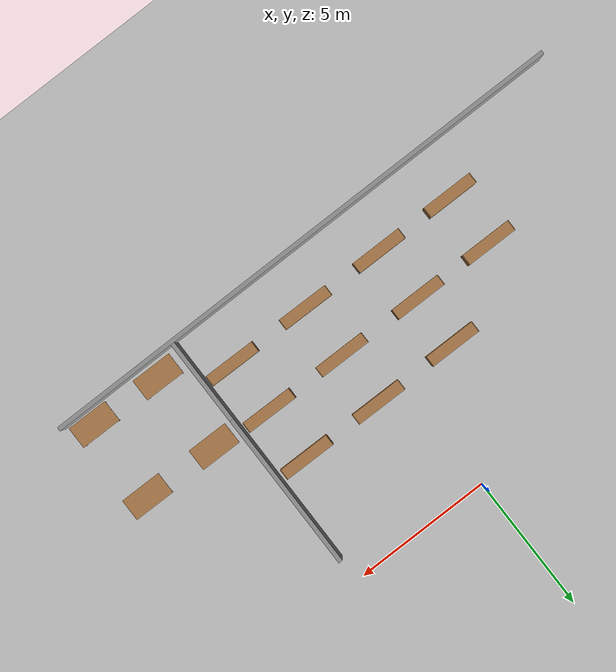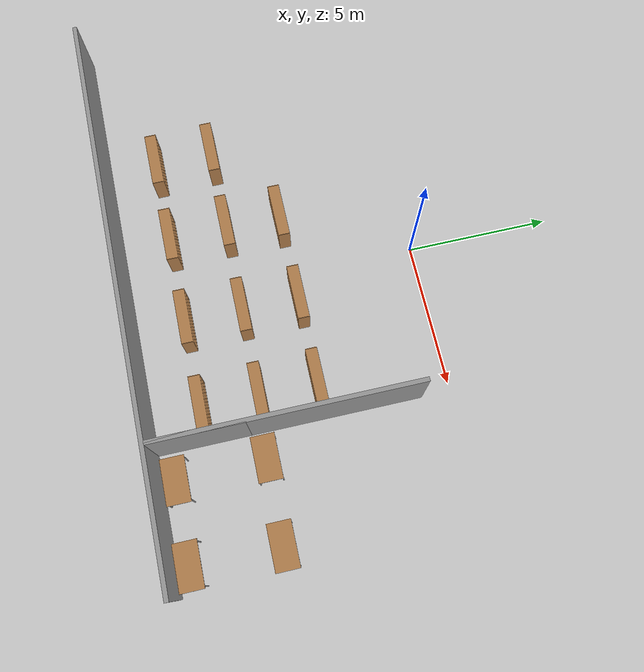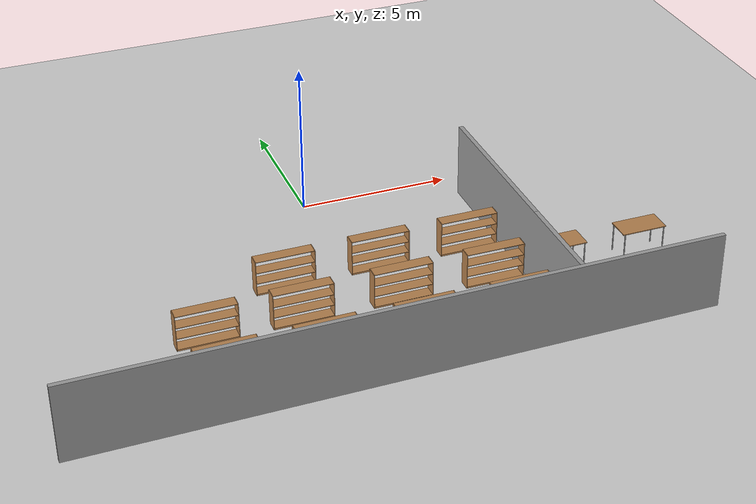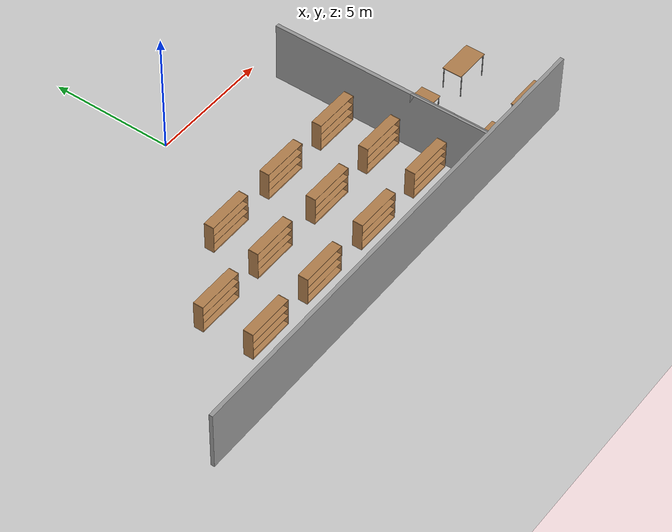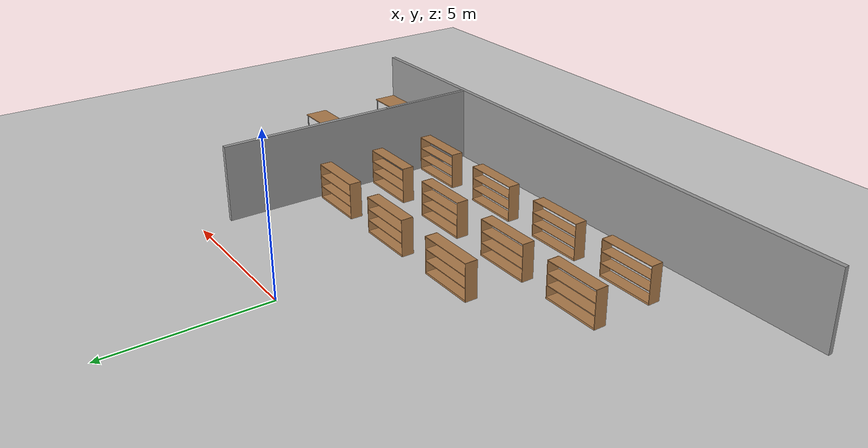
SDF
<sdf version="1.7">
 <world name="default">
  <model name="ground_plane">
   <static>1</static>
   <link name="link">
    <collision name="collision">
     <geometry><plane><normal>0 0 1</normal><size>100 100</size></plane></geometry>
     <surface>
      <contact><collide_bitmask>65535</collide_bitmask></contact>
      <friction><ode><mu>100</mu><mu2>50</mu2></ode></friction>
     </surface>
    </collision>
    <visual name="visual">
     <cast_shadows>0</cast_shadows>
     <geometry><plane><normal>0 0 1</normal><size>100 100</size></plane></geometry>
     <material>
      <script><uri>file://media/materials/scripts/gazebo.material</uri><name>Gazebo/Grey</name></script>
     </material>
    </visual>
   </link>
  </model>
  <model name="wall_20m_0_clone">
   <pose>-0.174596 -10.5481 0 0 0 -1.56837</pose>
   <link name="Wall_0">
    <collision name="Wall_0_Collision">
     <geometry><box><size>20 0.15 2.5</size></box></geometry>
     <pose>0 0 1.25 0 -0 0</pose>
    </collision>
    <visual name="Wall_0_Visual">
     <pose>0 0 1.25 0 -0 0</pose>
     <geometry><box><size>20 0.15 2.5</size></box></geometry>
     <material>
      <script><uri>file://media/materials/scripts/gazebo.material</uri><name>Gazebo/Grey</name></script>
      <ambient>1 1 1 1</ambient>
     </material>
     <meta><layer>0</layer></meta>
    </visual>
    <pose>-0.482276 -0 0 0 -0 1.5708</pose>
   </link>
   <static>1</static>
  </model>
  <model name="wall_9m_1">
   <pose>5.19681 -5.49004 0 0 0 -1.57385</pose>
   <link name="Wall_0">
    <collision name="Wall_0_Collision">
     <geometry><box><size>3.16 0.15 2.5</size></box></geometry>
     <pose>0 0 1.25 0 -0 0</pose>
    </collision>
    <visual name="Wall_0_Visual">
     <pose>0 0 1.25 0 -0 0</pose>
     <geometry><box><size>3.16 0.15 2.5</size></box></geometry>
     <material>
      <script><uri>file://media/materials/scripts/gazebo.material</uri><name>Gazebo/Grey</name></script>
      <ambient>1 1 1 1</ambient>
     </material>
     <meta><layer>0</layer></meta>
    </visual>
    <pose>2.92 0 0 0 -0 0</pose>
   </link>
   <link name="Wall_1">
    <collision name="Wall_1_Collision">
     <geometry><box><size>9 0.15 2.5</size></box></geometry>
     <pose>0 0 1.25 0 -0 0</pose>
    </collision>
    <visual name="Wall_1_Visual">
     <pose>0 0 1.25 0 -0 0</pose>
     <geometry><box><size>9 0.15 2.5</size></box></geometry>
     <material>
      <script><uri>file://media/materials/scripts/gazebo.material</uri><name>Gazebo/Grey</name></script>
      <ambient>1 1 1 1</ambient>
     </material>
     <meta><layer>0</layer></meta>
    </visual>
    <pose>0 0 0 0 -0 3.14159</pose>
   </link>
   <static>1</static>
  </model>
  <model name="bookshelf_twosided_0">
   <static>1</static>
   <link name="link">
    <inertial><mass>1</mass></inertial>
    <collision name="left_side">
     <pose>0.95 -0.195 0.6 0 -0 0</pose>
     <geometry><box><size>0.02 0.4 1.2</size></box></geometry>
    </collision>
    <visual name="left_side">
     <pose>0.95 -0.195 0.6 0 -0 0</pose>
     <geometry><box><size>0.02 0.4 1.2</size></box></geometry>
     <material>
      <script><uri>file://media/materials/scripts/gazebo.material</uri><name>Gazebo/Wood</name></script>
     </material>
    </visual>
    <collision name="right_side">
     <pose>-0.95 -0.195 0.6 0 -0 0</pose>
     <geometry><box><size>0.02 0.4 1.2</size></box></geometry>
    </collision>
    <visual name="right_side">
     <pose>-0.95 -0.195 0.6 0 -0 0</pose>
     <geometry><box><size>0.02 0.4 1.2</size></box></geometry>
     <material>
      <script><uri>file://media/materials/scripts/gazebo.material</uri><name>Gazebo/Wood</name></script>
     </material>
    </visual>
    <collision name="bottom">
     <pose>0 -0.195 0.03 0 -0 0</pose>
     <geometry><box><size>1.88 0.4 0.06</size></box></geometry>
    </collision>
    <visual name="bottom">
     <pose>0 -0.195 0.03 0 -0 0</pose>
     <geometry><box><size>1.88 0.4 0.06</size></box></geometry>
     <material>
      <script><uri>file://media/materials/scripts/gazebo.material</uri><name>Gazebo/Wood</name></script>
     </material>
    </visual>
    <collision name="top">
     <pose>0 -0.195 1.19 0 -0 0</pose>
     <geometry><box><size>1.88 0.4 0.02</size></box></geometry>
    </collision>
    <visual name="top">
     <pose>0 -0.195 1.19 0 -0 0</pose>
     <geometry><box><size>1.88 0.4 0.02</size></box></geometry>
     <material>
      <script><uri>file://media/materials/scripts/gazebo.material</uri><name>Gazebo/Wood</name></script>
     </material>
    </visual>
    <collision name="low_shelf">
     <pose>0 -0.195 0.43 0 -0 0</pose>
     <geometry><box><size>1.88 0.4 0.02</size></box></geometry>
    </collision>
    <visual name="low_shelf">
     <pose>0 -0.195 0.43 0 -0 0</pose>
     <geometry><box><size>1.88 0.4 0.02</size></box></geometry>
     <material>
      <script><uri>file://media/materials/scripts/gazebo.material</uri><name>Gazebo/Wood</name></script>
     </material>
    </visual>
    <collision name="high_shelf">
     <pose>0 -0.195 0.8 0 -0 0</pose>
     <geometry><box><size>1.88 0.4 0.02</size></box></geometry>
    </collision>
    <visual name="high_shelf">
     <pose>0 -0.195 0.8 0 -0 0</pose>
     <geometry><box><size>1.88 0.4 0.02</size></box></geometry>
     <material>
      <script><uri>file://media/materials/scripts/gazebo.material</uri><name>Gazebo/Wood</name></script>
     </material>
    </visual>
   </link>
   <pose>-5.00919 -8.07152 0 0 -0 0</pose>
  </model>
  <model name="bookshelf_twosided_1">
   <static>1</static>
   <link name="link">
    <inertial><mass>1</mass></inertial>
    <collision name="left_side">
     <pose>0.95 -0.195 0.6 0 -0 0</pose>
     <geometry><box><size>0.02 0.4 1.2</size></box></geometry>
    </collision>
    <visual name="left_side">
     <pose>0.95 -0.195 0.6 0 -0 0</pose>
     <geometry><box><size>0.02 0.4 1.2</size></box></geometry>
     <material>
      <script><uri>file://media/materials/scripts/gazebo.material</uri><name>Gazebo/Wood</name></script>
     </material>
    </visual>
    <collision name="right_side">
     <pose>-0.95 -0.195 0.6 0 -0 0</pose>
     <geometry><box><size>0.02 0.4 1.2</size></box></geometry>
    </collision>
    <visual name="right_side">
     <pose>-0.95 -0.195 0.6 0 -0 0</pose>
     <geometry><box><size>0.02 0.4 1.2</size></box></geometry>
     <material>
      <script><uri>file://media/materials/scripts/gazebo.material</uri><name>Gazebo/Wood</name></script>
     </material>
    </visual>
    <collision name="bottom">
     <pose>0 -0.195 0.03 0 -0 0</pose>
     <geometry><box><size>1.88 0.4 0.06</size></box></geometry>
    </collision>
    <visual name="bottom">
     <pose>0 -0.195 0.03 0 -0 0</pose>
     <geometry><box><size>1.88 0.4 0.06</size></box></geometry>
     <material>
      <script><uri>file://media/materials/scripts/gazebo.material</uri><name>Gazebo/Wood</name></script>
     </material>
    </visual>
    <collision name="top">
     <pose>0 -0.195 1.19 0 -0 0</pose>
     <geometry><box><size>1.88 0.4 0.02</size></box></geometry>
    </collision>
    <visual name="top">
     <pose>0 -0.195 1.19 0 -0 0</pose>
     <geometry><box><size>1.88 0.4 0.02</size></box></geometry>
     <material>
      <script><uri>file://media/materials/scripts/gazebo.material</uri><name>Gazebo/Wood</name></script>
     </material>
    </visual>
    <collision name="low_shelf">
     <pose>0 -0.195 0.43 0 -0 0</pose>
     <geometry><box><size>1.88 0.4 0.02</size></box></geometry>
    </collision>
    <visual name="low_shelf">
     <pose>0 -0.195 0.43 0 -0 0</pose>
     <geometry><box><size>1.88 0.4 0.02</size></box></geometry>
     <material>
      <script><uri>file://media/materials/scripts/gazebo.material</uri><name>Gazebo/Wood</name></script>
     </material>
    </visual>
    <collision name="high_shelf">
     <pose>0 -0.195 0.8 0 -0 0</pose>
     <geometry><box><size>1.88 0.4 0.02</size></box></geometry>
    </collision>
    <visual name="high_shelf">
     <pose>0 -0.195 0.8 0 -0 0</pose>
     <geometry><box><size>1.88 0.4 0.02</size></box></geometry>
     <material>
      <script><uri>file://media/materials/scripts/gazebo.material</uri><name>Gazebo/Wood</name></script>
     </material>
    </visual>
   </link>
   <pose>-2.03359 -8.06213 0 0 -0 0</pose>
  </model>
  <model name="bookshelf_twosided_3">
   <static>1</static>
   <link name="link">
    <inertial><mass>1</mass></inertial>
    <collision name="left_side">
     <pose>0.95 -0.195 0.6 0 -0 0</pose>
     <geometry><box><size>0.02 0.4 1.2</size></box></geometry>
    </collision>
    <visual name="left_side">
     <pose>0.95 -0.195 0.6 0 -0 0</pose>
     <geometry><box><size>0.02 0.4 1.2</size></box></geometry>
     <material>
      <script><uri>file://media/materials/scripts/gazebo.material</uri><name>Gazebo/Wood</name></script>
     </material>
    </visual>
    <collision name="right_side">
     <pose>-0.95 -0.195 0.6 0 -0 0</pose>
     <geometry><box><size>0.02 0.4 1.2</size></box></geometry>
    </collision>
    <visual name="right_side">
     <pose>-0.95 -0.195 0.6 0 -0 0</pose>
     <geometry><box><size>0.02 0.4 1.2</size></box></geometry>
     <material>
      <script><uri>file://media/materials/scripts/gazebo.material</uri><name>Gazebo/Wood</name></script>
     </material>
    </visual>
    <collision name="bottom">
     <pose>0 -0.195 0.03 0 -0 0</pose>
     <geometry><box><size>1.88 0.4 0.06</size></box></geometry>
    </collision>
    <visual name="bottom">
     <pose>0 -0.195 0.03 0 -0 0</pose>
     <geometry><box><size>1.88 0.4 0.06</size></box></geometry>
     <material>
      <script><uri>file://media/materials/scripts/gazebo.material</uri><name>Gazebo/Wood</name></script>
     </material>
    </visual>
    <collision name="top">
     <pose>0 -0.195 1.19 0 -0 0</pose>
     <geometry><box><size>1.88 0.4 0.02</size></box></geometry>
    </collision>
    <visual name="top">
     <pose>0 -0.195 1.19 0 -0 0</pose>
     <geometry><box><size>1.88 0.4 0.02</size></box></geometry>
     <material>
      <script><uri>file://media/materials/scripts/gazebo.material</uri><name>Gazebo/Wood</name></script>
     </material>
    </visual>
    <collision name="low_shelf">
     <pose>0 -0.195 0.43 0 -0 0</pose>
     <geometry><box><size>1.88 0.4 0.02</size></box></geometry>
    </collision>
    <visual name="low_shelf">
     <pose>0 -0.195 0.43 0 -0 0</pose>
     <geometry><box><size>1.88 0.4 0.02</size></box></geometry>
     <material>
      <script><uri>file://media/materials/scripts/gazebo.material</uri><name>Gazebo/Wood</name></script>
     </material>
    </visual>
    <collision name="high_shelf">
     <pose>0 -0.195 0.8 0 -0 0</pose>
     <geometry><box><size>1.88 0.4 0.02</size></box></geometry>
    </collision>
    <visual name="high_shelf">
     <pose>0 -0.195 0.8 0 -0 0</pose>
     <geometry><box><size>1.88 0.4 0.02</size></box></geometry>
     <material>
      <script><uri>file://media/materials/scripts/gazebo.material</uri><name>Gazebo/Wood</name></script>
     </material>
    </visual>
   </link>
   <pose>-5.05887 -6.04865 0 0 -0 0</pose>
  </model>
  <model name="bookshelf_twosided_4">
   <static>1</static>
   <link name="link">
    <inertial><mass>1</mass></inertial>
    <collision name="left_side">
     <pose>0.95 -0.195 0.6 0 -0 0</pose>
     <geometry><box><size>0.02 0.4 1.2</size></box></geometry>
    </collision>
    <visual name="left_side">
     <pose>0.95 -0.195 0.6 0 -0 0</pose>
     <geometry><box><size>0.02 0.4 1.2</size></box></geometry>
     <material>
      <script><uri>file://media/materials/scripts/gazebo.material</uri><name>Gazebo/Wood</name></script>
     </material>
    </visual>
    <collision name="right_side">
     <pose>-0.95 -0.195 0.6 0 -0 0</pose>
     <geometry><box><size>0.02 0.4 1.2</size></box></geometry>
    </collision>
    <visual name="right_side">
     <pose>-0.95 -0.195 0.6 0 -0 0</pose>
     <geometry><box><size>0.02 0.4 1.2</size></box></geometry>
     <material>
      <script><uri>file://media/materials/scripts/gazebo.material</uri><name>Gazebo/Wood</name></script>
     </material>
    </visual>
    <collision name="bottom">
     <pose>0 -0.195 0.03 0 -0 0</pose>
     <geometry><box><size>1.88 0.4 0.06</size></box></geometry>
    </collision>
    <visual name="bottom">
     <pose>0 -0.195 0.03 0 -0 0</pose>
     <geometry><box><size>1.88 0.4 0.06</size></box></geometry>
     <material>
      <script><uri>file://media/materials/scripts/gazebo.material</uri><name>Gazebo/Wood</name></script>
     </material>
    </visual>
    <collision name="top">
     <pose>0 -0.195 1.19 0 -0 0</pose>
     <geometry><box><size>1.88 0.4 0.02</size></box></geometry>
    </collision>
    <visual name="top">
     <pose>0 -0.195 1.19 0 -0 0</pose>
     <geometry><box><size>1.88 0.4 0.02</size></box></geometry>
     <material>
      <script><uri>file://media/materials/scripts/gazebo.material</uri><name>Gazebo/Wood</name></script>
     </material>
    </visual>
    <collision name="low_shelf">
     <pose>0 -0.195 0.43 0 -0 0</pose>
     <geometry><box><size>1.88 0.4 0.02</size></box></geometry>
    </collision>
    <visual name="low_shelf">
     <pose>0 -0.195 0.43 0 -0 0</pose>
     <geometry><box><size>1.88 0.4 0.02</size></box></geometry>
     <material>
      <script><uri>file://media/materials/scripts/gazebo.material</uri><name>Gazebo/Wood</name></script>
     </material>
    </visual>
    <collision name="high_shelf">
     <pose>0 -0.195 0.8 0 -0 0</pose>
     <geometry><box><size>1.88 0.4 0.02</size></box></geometry>
    </collision>
    <visual name="high_shelf">
     <pose>0 -0.195 0.8 0 -0 0</pose>
     <geometry><box><size>1.88 0.4 0.02</size></box></geometry>
     <material>
      <script><uri>file://media/materials/scripts/gazebo.material</uri><name>Gazebo/Wood</name></script>
     </material>
    </visual>
   </link>
   <pose>-2.11262 -6.05427 0 0 -0 0</pose>
  </model>
  <model name="bookshelf_twosided_7">
   <static>1</static>
   <link name="link">
    <inertial><mass>1</mass></inertial>
    <collision name="left_side">
     <pose>0.95 -0.195 0.6 0 -0 0</pose>
     <geometry><box><size>0.02 0.4 1.2</size></box></geometry>
    </collision>
    <visual name="left_side">
     <pose>0.95 -0.195 0.6 0 -0 0</pose>
     <geometry><box><size>0.02 0.4 1.2</size></box></geometry>
     <material>
      <script><uri>file://media/materials/scripts/gazebo.material</uri><name>Gazebo/Wood</name></script>
     </material>
    </visual>
    <collision name="right_side">
     <pose>-0.95 -0.195 0.6 0 -0 0</pose>
     <geometry><box><size>0.02 0.4 1.2</size></box></geometry>
    </collision>
    <visual name="right_side">
     <pose>-0.95 -0.195 0.6 0 -0 0</pose>
     <geometry><box><size>0.02 0.4 1.2</size></box></geometry>
     <material>
      <script><uri>file://media/materials/scripts/gazebo.material</uri><name>Gazebo/Wood</name></script>
     </material>
    </visual>
    <collision name="bottom">
     <pose>0 -0.195 0.03 0 -0 0</pose>
     <geometry><box><size>1.88 0.4 0.06</size></box></geometry>
    </collision>
    <visual name="bottom">
     <pose>0 -0.195 0.03 0 -0 0</pose>
     <geometry><box><size>1.88 0.4 0.06</size></box></geometry>
     <material>
      <script><uri>file://media/materials/scripts/gazebo.material</uri><name>Gazebo/Wood</name></script>
     </material>
    </visual>
    <collision name="top">
     <pose>0 -0.195 1.19 0 -0 0</pose>
     <geometry><box><size>1.88 0.4 0.02</size></box></geometry>
    </collision>
    <visual name="top">
     <pose>0 -0.195 1.19 0 -0 0</pose>
     <geometry><box><size>1.88 0.4 0.02</size></box></geometry>
     <material>
      <script><uri>file://media/materials/scripts/gazebo.material</uri><name>Gazebo/Wood</name></script>
     </material>
    </visual>
    <collision name="low_shelf">
     <pose>0 -0.195 0.43 0 -0 0</pose>
     <geometry><box><size>1.88 0.4 0.02</size></box></geometry>
    </collision>
    <visual name="low_shelf">
     <pose>0 -0.195 0.43 0 -0 0</pose>
     <geometry><box><size>1.88 0.4 0.02</size></box></geometry>
     <material>
      <script><uri>file://media/materials/scripts/gazebo.material</uri><name>Gazebo/Wood</name></script>
     </material>
    </visual>
    <collision name="high_shelf">
     <pose>0 -0.195 0.8 0 -0 0</pose>
     <geometry><box><size>1.88 0.4 0.02</size></box></geometry>
    </collision>
    <visual name="high_shelf">
     <pose>0 -0.195 0.8 0 -0 0</pose>
     <geometry><box><size>1.88 0.4 0.02</size></box></geometry>
     <material>
      <script><uri>file://media/materials/scripts/gazebo.material</uri><name>Gazebo/Wood</name></script>
     </material>
    </visual>
   </link>
   <pose>-2.06106 -4.13375 0 0 -0 0</pose>
  </model>
  <model name="bookshelf_twosided_11">
   <static>1</static>
   <link name="link">
    <inertial><mass>1</mass></inertial>
    <collision name="left_side">
     <pose>0.95 -0.195 0.6 0 -0 0</pose>
     <geometry><box><size>0.02 0.4 1.2</size></box></geometry>
    </collision>
    <visual name="left_side">
     <pose>0.95 -0.195 0.6 0 -0 0</pose>
     <geometry><box><size>0.02 0.4 1.2</size></box></geometry>
     <material>
      <script><uri>file://media/materials/scripts/gazebo.material</uri><name>Gazebo/Wood</name></script>
     </material>
    </visual>
    <collision name="right_side">
     <pose>-0.95 -0.195 0.6 0 -0 0</pose>
     <geometry><box><size>0.02 0.4 1.2</size></box></geometry>
    </collision>
    <visual name="right_side">
     <pose>-0.95 -0.195 0.6 0 -0 0</pose>
     <geometry><box><size>0.02 0.4 1.2</size></box></geometry>
     <material>
      <script><uri>file://media/materials/scripts/gazebo.material</uri><name>Gazebo/Wood</name></script>
     </material>
    </visual>
    <collision name="bottom">
     <pose>0 -0.195 0.03 0 -0 0</pose>
     <geometry><box><size>1.88 0.4 0.06</size></box></geometry>
    </collision>
    <visual name="bottom">
     <pose>0 -0.195 0.03 0 -0 0</pose>
     <geometry><box><size>1.88 0.4 0.06</size></box></geometry>
     <material>
      <script><uri>file://media/materials/scripts/gazebo.material</uri><name>Gazebo/Wood</name></script>
     </material>
    </visual>
    <collision name="top">
     <pose>0 -0.195 1.19 0 -0 0</pose>
     <geometry><box><size>1.88 0.4 0.02</size></box></geometry>
    </collision>
    <visual name="top">
     <pose>0 -0.195 1.19 0 -0 0</pose>
     <geometry><box><size>1.88 0.4 0.02</size></box></geometry>
     <material>
      <script><uri>file://media/materials/scripts/gazebo.material</uri><name>Gazebo/Wood</name></script>
     </material>
    </visual>
    <collision name="low_shelf">
     <pose>0 -0.195 0.43 0 -0 0</pose>
     <geometry><box><size>1.88 0.4 0.02</size></box></geometry>
    </collision>
    <visual name="low_shelf">
     <pose>0 -0.195 0.43 0 -0 0</pose>
     <geometry><box><size>1.88 0.4 0.02</size></box></geometry>
     <material>
      <script><uri>file://media/materials/scripts/gazebo.material</uri><name>Gazebo/Wood</name></script>
     </material>
    </visual>
    <collision name="high_shelf">
     <pose>0 -0.195 0.8 0 -0 0</pose>
     <geometry><box><size>1.88 0.4 0.02</size></box></geometry>
    </collision>
    <visual name="high_shelf">
     <pose>0 -0.195 0.8 0 -0 0</pose>
     <geometry><box><size>1.88 0.4 0.02</size></box></geometry>
     <material>
      <script><uri>file://media/materials/scripts/gazebo.material</uri><name>Gazebo/Wood</name></script>
     </material>
    </visual>
   </link>
   <pose>1.03452 -8.46293 0 0 -0 3.13433</pose>
  </model>
  <model name="bookshelf_twosided_11_clone">
   <static>1</static>
   <link name="link">
    <inertial><mass>1</mass></inertial>
    <collision name="left_side">
     <pose>0.95 -0.195 0.6 0 -0 0</pose>
     <geometry><box><size>0.02 0.4 1.2</size></box></geometry>
    </collision>
    <visual name="left_side">
     <pose>0.95 -0.195 0.6 0 -0 0</pose>
     <geometry><box><size>0.02 0.4 1.2</size></box></geometry>
     <material>
      <script><uri>file://media/materials/scripts/gazebo.material</uri><name>Gazebo/Wood</name></script>
     </material>
    </visual>
    <collision name="right_side">
     <pose>-0.95 -0.195 0.6 0 -0 0</pose>
     <geometry><box><size>0.02 0.4 1.2</size></box></geometry>
    </collision>
    <visual name="right_side">
     <pose>-0.95 -0.195 0.6 0 -0 0</pose>
     <geometry><box><size>0.02 0.4 1.2</size></box></geometry>
     <material>
      <script><uri>file://media/materials/scripts/gazebo.material</uri><name>Gazebo/Wood</name></script>
     </material>
    </visual>
    <collision name="bottom">
     <pose>0 -0.195 0.03 0 -0 0</pose>
     <geometry><box><size>1.88 0.4 0.06</size></box></geometry>
    </collision>
    <visual name="bottom">
     <pose>0 -0.195 0.03 0 -0 0</pose>
     <geometry><box><size>1.88 0.4 0.06</size></box></geometry>
     <material>
      <script><uri>file://media/materials/scripts/gazebo.material</uri><name>Gazebo/Wood</name></script>
     </material>
    </visual>
    <collision name="top">
     <pose>0 -0.195 1.19 0 -0 0</pose>
     <geometry><box><size>1.88 0.4 0.02</size></box></geometry>
    </collision>
    <visual name="top">
     <pose>0 -0.195 1.19 0 -0 0</pose>
     <geometry><box><size>1.88 0.4 0.02</size></box></geometry>
     <material>
      <script><uri>file://media/materials/scripts/gazebo.material</uri><name>Gazebo/Wood</name></script>
     </material>
    </visual>
    <collision name="low_shelf">
     <pose>0 -0.195 0.43 0 -0 0</pose>
     <geometry><box><size>1.88 0.4 0.02</size></box></geometry>
    </collision>
    <visual name="low_shelf">
     <pose>0 -0.195 0.43 0 -0 0</pose>
     <geometry><box><size>1.88 0.4 0.02</size></box></geometry>
     <material>
      <script><uri>file://media/materials/scripts/gazebo.material</uri><name>Gazebo/Wood</name></script>
     </material>
    </visual>
    <collision name="high_shelf">
     <pose>0 -0.195 0.8 0 -0 0</pose>
     <geometry><box><size>1.88 0.4 0.02</size></box></geometry>
    </collision>
    <visual name="high_shelf">
     <pose>0 -0.195 0.8 0 -0 0</pose>
     <geometry><box><size>1.88 0.4 0.02</size></box></geometry>
     <material>
      <script><uri>file://media/materials/scripts/gazebo.material</uri><name>Gazebo/Wood</name></script>
     </material>
    </visual>
   </link>
   <pose>1.04289 -6.48091 0 0 -0 3.14029</pose>
  </model>
  <model name="bookshelf_twosided_11_clone_0">
   <static>1</static>
   <link name="link">
    <inertial><mass>1</mass></inertial>
    <collision name="left_side">
     <pose>0.95 -0.195 0.6 0 -0 0</pose>
     <geometry><box><size>0.02 0.4 1.2</size></box></geometry>
    </collision>
    <visual name="left_side">
     <pose>0.95 -0.195 0.6 0 -0 0</pose>
     <geometry><box><size>0.02 0.4 1.2</size></box></geometry>
     <material>
      <script><uri>file://media/materials/scripts/gazebo.material</uri><name>Gazebo/Wood</name></script>
     </material>
    </visual>
    <collision name="right_side">
     <pose>-0.95 -0.195 0.6 0 -0 0</pose>
     <geometry><box><size>0.02 0.4 1.2</size></box></geometry>
    </collision>
    <visual name="right_side">
     <pose>-0.95 -0.195 0.6 0 -0 0</pose>
     <geometry><box><size>0.02 0.4 1.2</size></box></geometry>
     <material>
      <script><uri>file://media/materials/scripts/gazebo.material</uri><name>Gazebo/Wood</name></script>
     </material>
    </visual>
    <collision name="bottom">
     <pose>0 -0.195 0.03 0 -0 0</pose>
     <geometry><box><size>1.88 0.4 0.06</size></box></geometry>
    </collision>
    <visual name="bottom">
     <pose>0 -0.195 0.03 0 -0 0</pose>
     <geometry><box><size>1.88 0.4 0.06</size></box></geometry>
     <material>
      <script><uri>file://media/materials/scripts/gazebo.material</uri><name>Gazebo/Wood</name></script>
     </material>
    </visual>
    <collision name="top">
     <pose>0 -0.195 1.19 0 -0 0</pose>
     <geometry><box><size>1.88 0.4 0.02</size></box></geometry>
    </collision>
    <visual name="top">
     <pose>0 -0.195 1.19 0 -0 0</pose>
     <geometry><box><size>1.88 0.4 0.02</size></box></geometry>
     <material>
      <script><uri>file://media/materials/scripts/gazebo.material</uri><name>Gazebo/Wood</name></script>
     </material>
    </visual>
    <collision name="low_shelf">
     <pose>0 -0.195 0.43 0 -0 0</pose>
     <geometry><box><size>1.88 0.4 0.02</size></box></geometry>
    </collision>
    <visual name="low_shelf">
     <pose>0 -0.195 0.43 0 -0 0</pose>
     <geometry><box><size>1.88 0.4 0.02</size></box></geometry>
     <material>
      <script><uri>file://media/materials/scripts/gazebo.material</uri><name>Gazebo/Wood</name></script>
     </material>
    </visual>
    <collision name="high_shelf">
     <pose>0 -0.195 0.8 0 -0 0</pose>
     <geometry><box><size>1.88 0.4 0.02</size></box></geometry>
    </collision>
    <visual name="high_shelf">
     <pose>0 -0.195 0.8 0 -0 0</pose>
     <geometry><box><size>1.88 0.4 0.02</size></box></geometry>
     <material>
      <script><uri>file://media/materials/scripts/gazebo.material</uri><name>Gazebo/Wood</name></script>
     </material>
    </visual>
   </link>
   <pose>1.03937 -4.50467 0 0 -0 3.13857</pose>
  </model>
  <model name="table_clone_0_clone">
   <static>1</static>
   <link name="link">
    <collision name="surface">
     <pose>0 0 1 0 -0 0</pose>
     <geometry><box><size>1.5 0.8 0.03</size></box></geometry>
     <surface><friction><ode><mu>0.6</mu><mu2>0.6</mu2></ode></friction></surface>
    </collision>
    <visual name="visual1">
     <pose>0 0 1 0 -0 0</pose>
     <geometry><box><size>1.5 0.8 0.03</size></box></geometry>
     <material>
      <script><uri>file://media/materials/scripts/gazebo.material</uri><name>Gazebo/Wood</name></script>
     </material>
    </visual>
    <collision name="front_left_leg">
     <pose>0.68 0.38 0.5 0 -0 0</pose>
     <geometry><cylinder><radius>0.02</radius><length>1</length></cylinder></geometry>
    </collision>
    <visual name="front_left_leg">
     <pose>0.68 0.38 0.5 0 -0 0</pose>
     <geometry><cylinder><radius>0.02</radius><length>1</length></cylinder></geometry>
     <material>
      <script><uri>file://media/materials/scripts/gazebo.material</uri><name>Gazebo/Grey</name></script>
     </material>
    </visual>
    <collision name="front_right_leg">
     <pose>0.68 -0.38 0.5 0 -0 0</pose>
     <geometry><cylinder><radius>0.02</radius><length>1</length></cylinder></geometry>
    </collision>
    <visual name="front_right_leg">
     <pose>0.68 -0.38 0.5 0 -0 0</pose>
     <geometry><cylinder><radius>0.02</radius><length>1</length></cylinder></geometry>
     <material>
      <script><uri>file://media/materials/scripts/gazebo.material</uri><name>Gazebo/Grey</name></script>
     </material>
    </visual>
    <collision name="back_right_leg">
     <pose>-0.68 -0.38 0.5 0 -0 0</pose>
     <geometry><cylinder><radius>0.02</radius><length>1</length></cylinder></geometry>
    </collision>
    <visual name="back_right_leg">
     <pose>-0.68 -0.38 0.5 0 -0 0</pose>
     <geometry><cylinder><radius>0.02</radius><length>1</length></cylinder></geometry>
     <material>
      <script><uri>file://media/materials/scripts/gazebo.material</uri><name>Gazebo/Grey</name></script>
     </material>
    </visual>
    <collision name="back_left_leg">
     <pose>-0.68 0.38 0.5 0 -0 0</pose>
     <geometry><cylinder><radius>0.02</radius><length>1</length></cylinder></geometry>
    </collision>
    <visual name="back_left_leg">
     <pose>-0.68 0.38 0.5 0 -0 0</pose>
     <geometry><cylinder><radius>0.02</radius><length>1</length></cylinder></geometry>
     <material>
      <script><uri>file://media/materials/scripts/gazebo.material</uri><name>Gazebo/Grey</name></script>
     </material>
    </visual>
   </link>
   <pose>6.29286 -9.44299 0 0 -0 3.13908</pose>
  </model>
  <model name="table_clone_0_clone_0">
   <static>1</static>
   <link name="link">
    <collision name="surface">
     <pose>0 0 1 0 -0 0</pose>
     <geometry><box><size>1.5 0.8 0.03</size></box></geometry>
     <surface><friction><ode><mu>0.6</mu><mu2>0.6</mu2></ode></friction></surface>
    </collision>
    <visual name="visual1">
     <pose>0 0 1 0 -0 0</pose>
     <geometry><box><size>1.5 0.8 0.03</size></box></geometry>
     <material>
      <script><uri>file://media/materials/scripts/gazebo.material</uri><name>Gazebo/Wood</name></script>
     </material>
    </visual>
    <collision name="front_left_leg">
     <pose>0.68 0.38 0.5 0 -0 0</pose>
     <geometry><cylinder><radius>0.02</radius><length>1</length></cylinder></geometry>
    </collision>
    <visual name="front_left_leg">
     <pose>0.68 0.38 0.5 0 -0 0</pose>
     <geometry><cylinder><radius>0.02</radius><length>1</length></cylinder></geometry>
     <material>
      <script><uri>file://media/materials/scripts/gazebo.material</uri><name>Gazebo/Grey</name></script>
     </material>
    </visual>
    <collision name="front_right_leg">
     <pose>0.68 -0.38 0.5 0 -0 0</pose>
     <geometry><cylinder><radius>0.02</radius><length>1</length></cylinder></geometry>
    </collision>
    <visual name="front_right_leg">
     <pose>0.68 -0.38 0.5 0 -0 0</pose>
     <geometry><cylinder><radius>0.02</radius><length>1</length></cylinder></geometry>
     <material>
      <script><uri>file://media/materials/scripts/gazebo.material</uri><name>Gazebo/Grey</name></script>
     </material>
    </visual>
    <collision name="back_right_leg">
     <pose>-0.68 -0.38 0.5 0 -0 0</pose>
     <geometry><cylinder><radius>0.02</radius><length>1</length></cylinder></geometry>
    </collision>
    <visual name="back_right_leg">
     <pose>-0.68 -0.38 0.5 0 -0 0</pose>
     <geometry><cylinder><radius>0.02</radius><length>1</length></cylinder></geometry>
     <material>
      <script><uri>file://media/materials/scripts/gazebo.material</uri><name>Gazebo/Grey</name></script>
     </material>
    </visual>
    <collision name="back_left_leg">
     <pose>-0.68 0.38 0.5 0 -0 0</pose>
     <geometry><cylinder><radius>0.02</radius><length>1</length></cylinder></geometry>
    </collision>
    <visual name="back_left_leg">
     <pose>-0.68 0.38 0.5 0 -0 0</pose>
     <geometry><cylinder><radius>0.02</radius><length>1</length></cylinder></geometry>
     <material>
      <script><uri>file://media/materials/scripts/gazebo.material</uri><name>Gazebo/Grey</name></script>
     </material>
    </visual>
   </link>
   <pose>8.92446 -9.49022 -0 0 -0 3.13908</pose>
  </model>
  <model name="table_clone_0_clone_1">
   <static>1</static>
   <link name="link">
    <collision name="surface">
     <pose>0 0 1 0 -0 0</pose>
     <geometry><box><size>1.5 0.8 0.03</size></box></geometry>
     <surface><friction><ode><mu>0.6</mu><mu2>0.6</mu2></ode></friction></surface>
    </collision>
    <visual name="visual1">
     <pose>0 0 1 0 -0 0</pose>
     <geometry><box><size>1.5 0.8 0.03</size></box></geometry>
     <material>
      <script><uri>file://media/materials/scripts/gazebo.material</uri><name>Gazebo/Wood</name></script>
     </material>
    </visual>
    <collision name="front_left_leg">
     <pose>0.68 0.38 0.5 0 -0 0</pose>
     <geometry><cylinder><radius>0.02</radius><length>1</length></cylinder></geometry>
    </collision>
    <visual name="front_left_leg">
     <pose>0.68 0.38 0.5 0 -0 0</pose>
     <geometry><cylinder><radius>0.02</radius><length>1</length></cylinder></geometry>
     <material>
      <script><uri>file://media/materials/scripts/gazebo.material</uri><name>Gazebo/Grey</name></script>
     </material>
    </visual>
    <collision name="front_right_leg">
     <pose>0.68 -0.38 0.5 0 -0 0</pose>
     <geometry><cylinder><radius>0.02</radius><length>1</length></cylinder></geometry>
    </collision>
    <visual name="front_right_leg">
     <pose>0.68 -0.38 0.5 0 -0 0</pose>
     <geometry><cylinder><radius>0.02</radius><length>1</length></cylinder></geometry>
     <material>
      <script><uri>file://media/materials/scripts/gazebo.material</uri><name>Gazebo/Grey</name></script>
     </material>
    </visual>
    <collision name="back_right_leg">
     <pose>-0.68 -0.38 0.5 0 -0 0</pose>
     <geometry><cylinder><radius>0.02</radius><length>1</length></cylinder></geometry>
    </collision>
    <visual name="back_right_leg">
     <pose>-0.68 -0.38 0.5 0 -0 0</pose>
     <geometry><cylinder><radius>0.02</radius><length>1</length></cylinder></geometry>
     <material>
      <script><uri>file://media/materials/scripts/gazebo.material</uri><name>Gazebo/Grey</name></script>
     </material>
    </visual>
    <collision name="back_left_leg">
     <pose>-0.68 0.38 0.5 0 -0 0</pose>
     <geometry><cylinder><radius>0.02</radius><length>1</length></cylinder></geometry>
    </collision>
    <visual name="back_left_leg">
     <pose>-0.68 0.38 0.5 0 -0 0</pose>
     <geometry><cylinder><radius>0.02</radius><length>1</length></cylinder></geometry>
     <material>
      <script><uri>file://media/materials/scripts/gazebo.material</uri><name>Gazebo/Grey</name></script>
     </material>
    </visual>
   </link>
   <pose>6.24204 -6.48087 0 0 -0 3.13908</pose>
  </model>
  <model name="table_clone_0_clone_2">
   <static>1</static>
   <link name="link">
    <collision name="surface">
     <pose>0 0 1 0 -0 0</pose>
     <geometry><box><size>1.5 0.8 0.03</size></box></geometry>
     <surface><friction><ode><mu>0.6</mu><mu2>0.6</mu2></ode></friction></surface>
    </collision>
    <visual name="visual1">
     <pose>0 0 1 0 -0 0</pose>
     <geometry><box><size>1.5 0.8 0.03</size></box></geometry>
     <material>
      <script><uri>file://media/materials/scripts/gazebo.material</uri><name>Gazebo/Wood</name></script>
     </material>
    </visual>
    <collision name="front_left_leg">
     <pose>0.68 0.38 0.5 0 -0 0</pose>
     <geometry><cylinder><radius>0.02</radius><length>1</length></cylinder></geometry>
    </collision>
    <visual name="front_left_leg">
     <pose>0.68 0.38 0.5 0 -0 0</pose>
     <geometry><cylinder><radius>0.02</radius><length>1</length></cylinder></geometry>
     <material>
      <script><uri>file://media/materials/scripts/gazebo.material</uri><name>Gazebo/Grey</name></script>
     </material>
    </visual>
    <collision name="front_right_leg">
     <pose>0.68 -0.38 0.5 0 -0 0</pose>
     <geometry><cylinder><radius>0.02</radius><length>1</length></cylinder></geometry>
    </collision>
    <visual name="front_right_leg">
     <pose>0.68 -0.38 0.5 0 -0 0</pose>
     <geometry><cylinder><radius>0.02</radius><length>1</length></cylinder></geometry>
     <material>
      <script><uri>file://media/materials/scripts/gazebo.material</uri><name>Gazebo/Grey</name></script>
     </material>
    </visual>
    <collision name="back_right_leg">
     <pose>-0.68 -0.38 0.5 0 -0 0</pose>
     <geometry><cylinder><radius>0.02</radius><length>1</length></cylinder></geometry>
    </collision>
    <visual name="back_right_leg">
     <pose>-0.68 -0.38 0.5 0 -0 0</pose>
     <geometry><cylinder><radius>0.02</radius><length>1</length></cylinder></geometry>
     <material>
      <script><uri>file://media/materials/scripts/gazebo.material</uri><name>Gazebo/Grey</name></script>
     </material>
    </visual>
    <collision name="back_left_leg">
     <pose>-0.68 0.38 0.5 0 -0 0</pose>
     <geometry><cylinder><radius>0.02</radius><length>1</length></cylinder></geometry>
    </collision>
    <visual name="back_left_leg">
     <pose>-0.68 0.38 0.5 0 -0 0</pose>
     <geometry><cylinder><radius>0.02</radius><length>1</length></cylinder></geometry>
     <material>
      <script><uri>file://media/materials/scripts/gazebo.material</uri><name>Gazebo/Grey</name></script>
     </material>
    </visual>
   </link>
   <pose>8.99256 -6.52303 -0 0 -0 3.13908</pose>
  </model>
  <model name="bookshelf_twosided_11_clone_1">
   <static>1</static>
   <link name="link">
    <inertial><mass>1</mass></inertial>
    <collision name="left_side">
     <pose>0.95 -0.195 0.6 0 -0 0</pose>
     <geometry><box><size>0.02 0.4 1.2</size></box></geometry>
    </collision>
    <visual name="left_side">
     <pose>0.95 -0.195 0.6 0 -0 0</pose>
     <geometry><box><size>0.02 0.4 1.2</size></box></geometry>
     <material>
      <script><uri>file://media/materials/scripts/gazebo.material</uri><name>Gazebo/Wood</name></script>
     </material>
    </visual>
    <collision name="right_side">
     <pose>-0.95 -0.195 0.6 0 -0 0</pose>
     <geometry><box><size>0.02 0.4 1.2</size></box></geometry>
    </collision>
    <visual name="right_side">
     <pose>-0.95 -0.195 0.6 0 -0 0</pose>
     <geometry><box><size>0.02 0.4 1.2</size></box></geometry>
     <material>
      <script><uri>file://media/materials/scripts/gazebo.material</uri><name>Gazebo/Wood</name></script>
     </material>
    </visual>
    <collision name="bottom">
     <pose>0 -0.195 0.03 0 -0 0</pose>
     <geometry><box><size>1.88 0.4 0.06</size></box></geometry>
    </collision>
    <visual name="bottom">
     <pose>0 -0.195 0.03 0 -0 0</pose>
     <geometry><box><size>1.88 0.4 0.06</size></box></geometry>
     <material>
      <script><uri>file://media/materials/scripts/gazebo.material</uri><name>Gazebo/Wood</name></script>
     </material>
    </visual>
    <collision name="top">
     <pose>0 -0.195 1.19 0 -0 0</pose>
     <geometry><box><size>1.88 0.4 0.02</size></box></geometry>
    </collision>
    <visual name="top">
     <pose>0 -0.195 1.19 0 -0 0</pose>
     <geometry><box><size>1.88 0.4 0.02</size></box></geometry>
     <material>
      <script><uri>file://media/materials/scripts/gazebo.material</uri><name>Gazebo/Wood</name></script>
     </material>
    </visual>
    <collision name="low_shelf">
     <pose>0 -0.195 0.43 0 -0 0</pose>
     <geometry><box><size>1.88 0.4 0.02</size></box></geometry>
    </collision>
    <visual name="low_shelf">
     <pose>0 -0.195 0.43 0 -0 0</pose>
     <geometry><box><size>1.88 0.4 0.02</size></box></geometry>
     <material>
      <script><uri>file://media/materials/scripts/gazebo.material</uri><name>Gazebo/Wood</name></script>
     </material>
    </visual>
    <collision name="high_shelf">
     <pose>0 -0.195 0.8 0 -0 0</pose>
     <geometry><box><size>1.88 0.4 0.02</size></box></geometry>
    </collision>
    <visual name="high_shelf">
     <pose>0 -0.195 0.8 0 -0 0</pose>
     <geometry><box><size>1.88 0.4 0.02</size></box></geometry>
     <material>
      <script><uri>file://media/materials/scripts/gazebo.material</uri><name>Gazebo/Wood</name></script>
     </material>
    </visual>
   </link>
   <pose>4.08155 -8.47165 0 0 -0 3.13433</pose>
  </model>
  <model name="bookshelf_twosided_11_clone_1_clone">
   <static>1</static>
   <link name="link">
    <inertial><mass>1</mass></inertial>
    <collision name="left_side">
     <pose>0.95 -0.195 0.6 0 -0 0</pose>
     <geometry><box><size>0.02 0.4 1.2</size></box></geometry>
    </collision>
    <visual name="left_side">
     <pose>0.95 -0.195 0.6 0 -0 0</pose>
     <geometry><box><size>0.02 0.4 1.2</size></box></geometry>
     <material>
      <script><uri>file://media/materials/scripts/gazebo.material</uri><name>Gazebo/Wood</name></script>
     </material>
    </visual>
    <collision name="right_side">
     <pose>-0.95 -0.195 0.6 0 -0 0</pose>
     <geometry><box><size>0.02 0.4 1.2</size></box></geometry>
    </collision>
    <visual name="right_side">
     <pose>-0.95 -0.195 0.6 0 -0 0</pose>
     <geometry><box><size>0.02 0.4 1.2</size></box></geometry>
     <material>
      <script><uri>file://media/materials/scripts/gazebo.material</uri><name>Gazebo/Wood</name></script>
     </material>
    </visual>
    <collision name="bottom">
     <pose>0 -0.195 0.03 0 -0 0</pose>
     <geometry><box><size>1.88 0.4 0.06</size></box></geometry>
    </collision>
    <visual name="bottom">
     <pose>0 -0.195 0.03 0 -0 0</pose>
     <geometry><box><size>1.88 0.4 0.06</size></box></geometry>
     <material>
      <script><uri>file://media/materials/scripts/gazebo.material</uri><name>Gazebo/Wood</name></script>
     </material>
    </visual>
    <collision name="top">
     <pose>0 -0.195 1.19 0 -0 0</pose>
     <geometry><box><size>1.88 0.4 0.02</size></box></geometry>
    </collision>
    <visual name="top">
     <pose>0 -0.195 1.19 0 -0 0</pose>
     <geometry><box><size>1.88 0.4 0.02</size></box></geometry>
     <material>
      <script><uri>file://media/materials/scripts/gazebo.material</uri><name>Gazebo/Wood</name></script>
     </material>
    </visual>
    <collision name="low_shelf">
     <pose>0 -0.195 0.43 0 -0 0</pose>
     <geometry><box><size>1.88 0.4 0.02</size></box></geometry>
    </collision>
    <visual name="low_shelf">
     <pose>0 -0.195 0.43 0 -0 0</pose>
     <geometry><box><size>1.88 0.4 0.02</size></box></geometry>
     <material>
      <script><uri>file://media/materials/scripts/gazebo.material</uri><name>Gazebo/Wood</name></script>
     </material>
    </visual>
    <collision name="high_shelf">
     <pose>0 -0.195 0.8 0 -0 0</pose>
     <geometry><box><size>1.88 0.4 0.02</size></box></geometry>
    </collision>
    <visual name="high_shelf">
     <pose>0 -0.195 0.8 0 -0 0</pose>
     <geometry><box><size>1.88 0.4 0.02</size></box></geometry>
     <material>
      <script><uri>file://media/materials/scripts/gazebo.material</uri><name>Gazebo/Wood</name></script>
     </material>
    </visual>
   </link>
   <pose>4.06331 -6.5032 0 0 -0 3.13433</pose>
  </model>
  <model name="bookshelf_twosided_11_clone_0_clone_0">
   <static>1</static>
   <link name="link">
    <inertial><mass>1</mass></inertial>
    <collision name="left_side">
     <pose>0.95 -0.195 0.6 0 -0 0</pose>
     <geometry><box><size>0.02 0.4 1.2</size></box></geometry>
    </collision>
    <visual name="left_side">
     <pose>0.95 -0.195 0.6 0 -0 0</pose>
     <geometry><box><size>0.02 0.4 1.2</size></box></geometry>
     <material>
      <script><uri>file://media/materials/scripts/gazebo.material</uri><name>Gazebo/Wood</name></script>
     </material>
    </visual>
    <collision name="right_side">
     <pose>-0.95 -0.195 0.6 0 -0 0</pose>
     <geometry><box><size>0.02 0.4 1.2</size></box></geometry>
    </collision>
    <visual name="right_side">
     <pose>-0.95 -0.195 0.6 0 -0 0</pose>
     <geometry><box><size>0.02 0.4 1.2</size></box></geometry>
     <material>
      <script><uri>file://media/materials/scripts/gazebo.material</uri><name>Gazebo/Wood</name></script>
     </material>
    </visual>
    <collision name="bottom">
     <pose>0 -0.195 0.03 0 -0 0</pose>
     <geometry><box><size>1.88 0.4 0.06</size></box></geometry>
    </collision>
    <visual name="bottom">
     <pose>0 -0.195 0.03 0 -0 0</pose>
     <geometry><box><size>1.88 0.4 0.06</size></box></geometry>
     <material>
      <script><uri>file://media/materials/scripts/gazebo.material</uri><name>Gazebo/Wood</name></script>
     </material>
    </visual>
    <collision name="top">
     <pose>0 -0.195 1.19 0 -0 0</pose>
     <geometry><box><size>1.88 0.4 0.02</size></box></geometry>
    </collision>
    <visual name="top">
     <pose>0 -0.195 1.19 0 -0 0</pose>
     <geometry><box><size>1.88 0.4 0.02</size></box></geometry>
     <material>
      <script><uri>file://media/materials/scripts/gazebo.material</uri><name>Gazebo/Wood</name></script>
     </material>
    </visual>
    <collision name="low_shelf">
     <pose>0 -0.195 0.43 0 -0 0</pose>
     <geometry><box><size>1.88 0.4 0.02</size></box></geometry>
    </collision>
    <visual name="low_shelf">
     <pose>0 -0.195 0.43 0 -0 0</pose>
     <geometry><box><size>1.88 0.4 0.02</size></box></geometry>
     <material>
      <script><uri>file://media/materials/scripts/gazebo.material</uri><name>Gazebo/Wood</name></script>
     </material>
    </visual>
    <collision name="high_shelf">
     <pose>0 -0.195 0.8 0 -0 0</pose>
     <geometry><box><size>1.88 0.4 0.02</size></box></geometry>
    </collision>
    <visual name="high_shelf">
     <pose>0 -0.195 0.8 0 -0 0</pose>
     <geometry><box><size>1.88 0.4 0.02</size></box></geometry>
     <material>
      <script><uri>file://media/materials/scripts/gazebo.material</uri><name>Gazebo/Wood</name></script>
     </material>
    </visual>
   </link>
   <pose>4.03144 -4.52009 0 0 -0 3.13857</pose>
  </model>
 </world>
</sdf>
